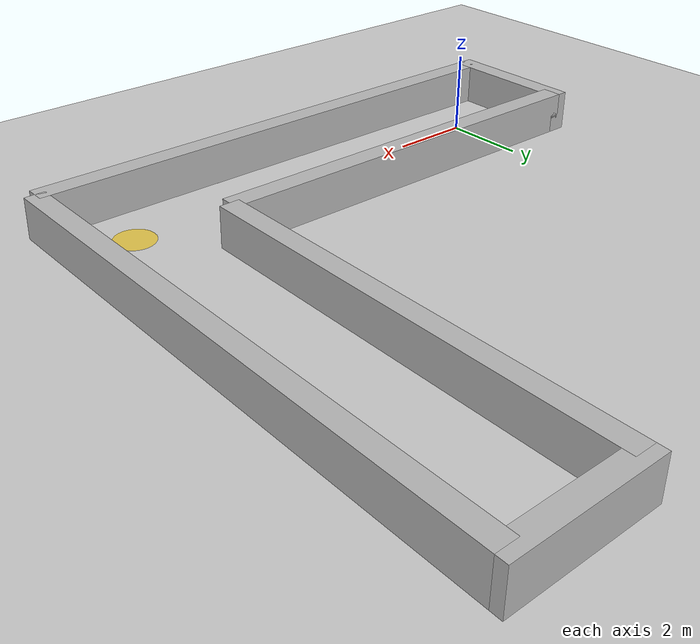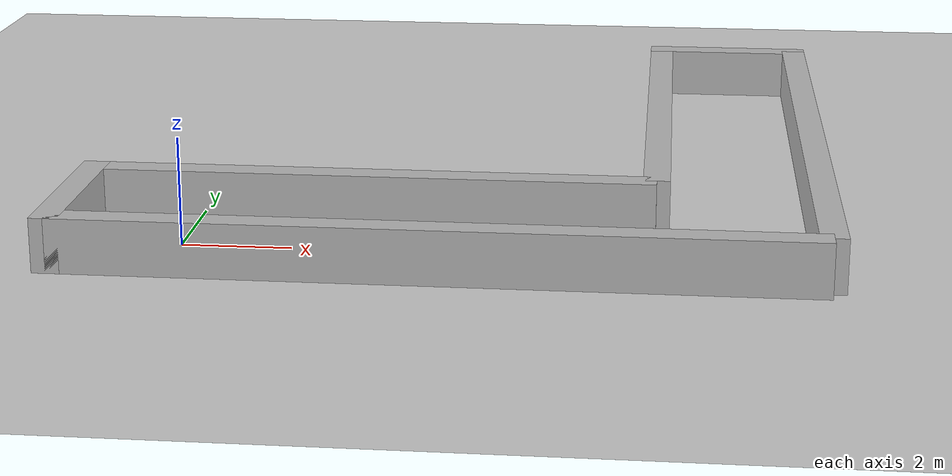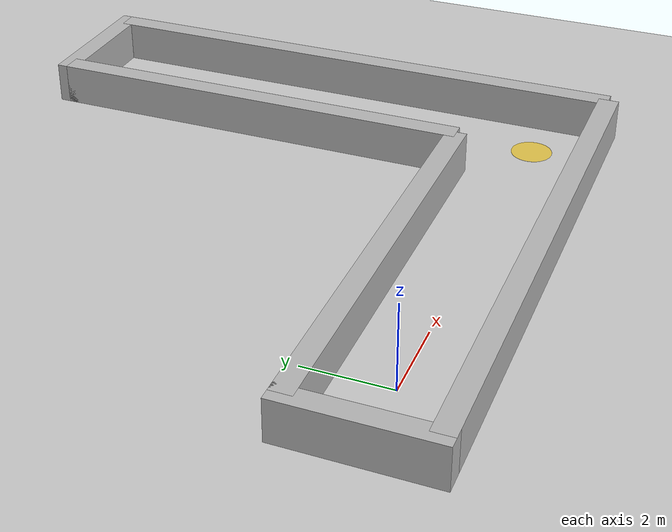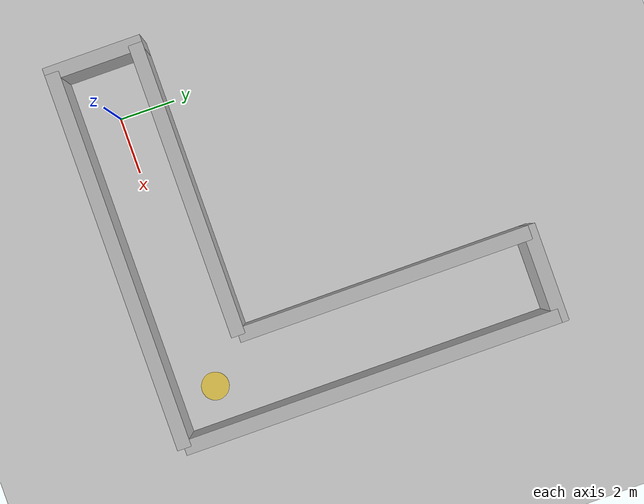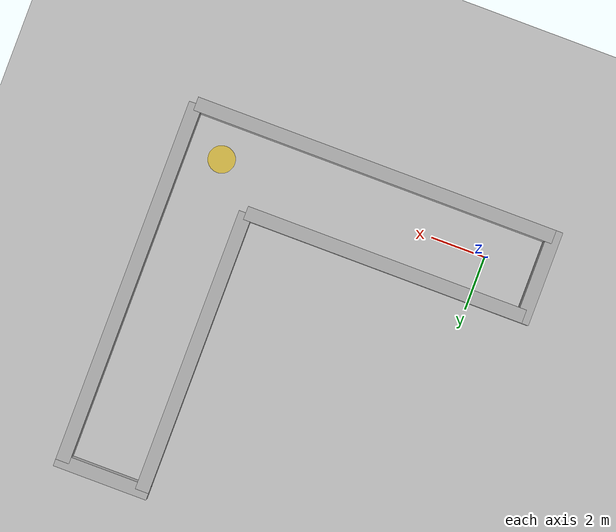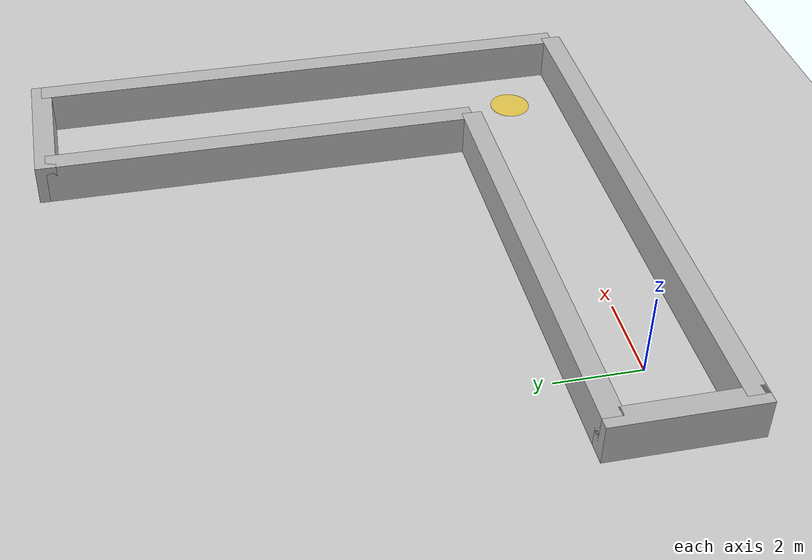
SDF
<?xml version="1.0" ?>
<sdf version="1.6">
  <world name="default">
    <include><uri>model://sun</uri></include>
    <include><uri>model://ground_plane</uri></include>

    <model name="wall_bottom">
      <static>true</static><pose>4.75 -1.5 0.5 0 0 0</pose>
      <link name="link">
        <collision name="collision"><geometry><box><size>13.5 0.5 1.0</size></box></geometry></collision>
        <visual name="visual"><geometry><box><size>13.5 0.5 1.0</size></box></geometry>
          <material><script><uri>file://media/materials/scripts/gazebo.material</uri><name>Gazebo/Brick</name></script></material>
        </visual>
      </link>
    </model>

    <model name="wall_top_inner">
      <static>true</static><pose>3.25 1.5 0.5 0 0 0</pose>
      <link name="link">
        <collision name="collision"><geometry><box><size>10.5 0.5 1.0</size></box></geometry></collision>
        <visual name="visual"><geometry><box><size>10.5 0.5 1.0</size></box></geometry>
          <material><script><uri>file://media/materials/scripts/gazebo.material</uri><name>Gazebo/Brick</name></script></material>
        </visual>
      </link>
    </model>

    <model name="wall_right_outer">
      <static>true</static><pose>11.5 5.25 0.5 0 0 0</pose>
      <link name="link">
        <collision name="collision"><geometry><box><size>0.5 13.5 1.0</size></box></geometry></collision>
        <visual name="visual"><geometry><box><size>0.5 13.5 1.0</size></box></geometry>
          <material><script><uri>file://media/materials/scripts/gazebo.material</uri><name>Gazebo/Brick</name></script></material>
        </visual>
      </link>
    </model>

    <model name="wall_left_inner">
      <static>true</static><pose>8.5 6.75 0.5 0 0 0</pose>
      <link name="link">
        <collision name="collision"><geometry><box><size>0.5 10.5 1.0</size></box></geometry></collision>
        <visual name="visual"><geometry><box><size>0.5 10.5 1.0</size></box></geometry>
          <material><script><uri>file://media/materials/scripts/gazebo.material</uri><name>Gazebo/Brick</name></script></material>
        </visual>
      </link>
    </model>

    <model name="wall_start"><static>true</static><pose>-2.0 0.0 0.5 0 0 0</pose><link name="link"><collision name="collision"><geometry><box><size>0.5 3.5 1.0</size></box></geometry></collision><visual name="visual"><geometry><box><size>0.5 3.5 1.0</size></box></geometry><material><script><uri>file://media/materials/scripts/gazebo.material</uri><name>Gazebo/Brick</name></script></material></visual></link></model>

    <model name="wall_end"><static>true</static><pose>10.0 12.0 0.5 0 0 0</pose><link name="link"><collision name="collision"><geometry><box><size>3.5 0.5 1.0</size></box></geometry></collision><visual name="visual"><geometry><box><size>3.5 0.5 1.0</size></box></geometry><material><script><uri>file://media/materials/scripts/gazebo.material</uri><name>Gazebo/Brick</name></script></material></visual></link></model>

    <model name="target_marker">
      <static>true</static><pose>10.0 0.0 0.005 0 0 0</pose>
      <link name="link">
        <visual name="visual"><geometry><cylinder><radius>0.5</radius><length>0.01</length></cylinder></geometry>
          <material><ambient>1.0 0.8 0.0 0.6</ambient><diffuse>1.0 0.8 0.0 0.6</diffuse><emissive>0.3 0.2 0.0 1.0</emissive></material>
        </visual>
      </link>
    </model>
  </world>
</sdf>
